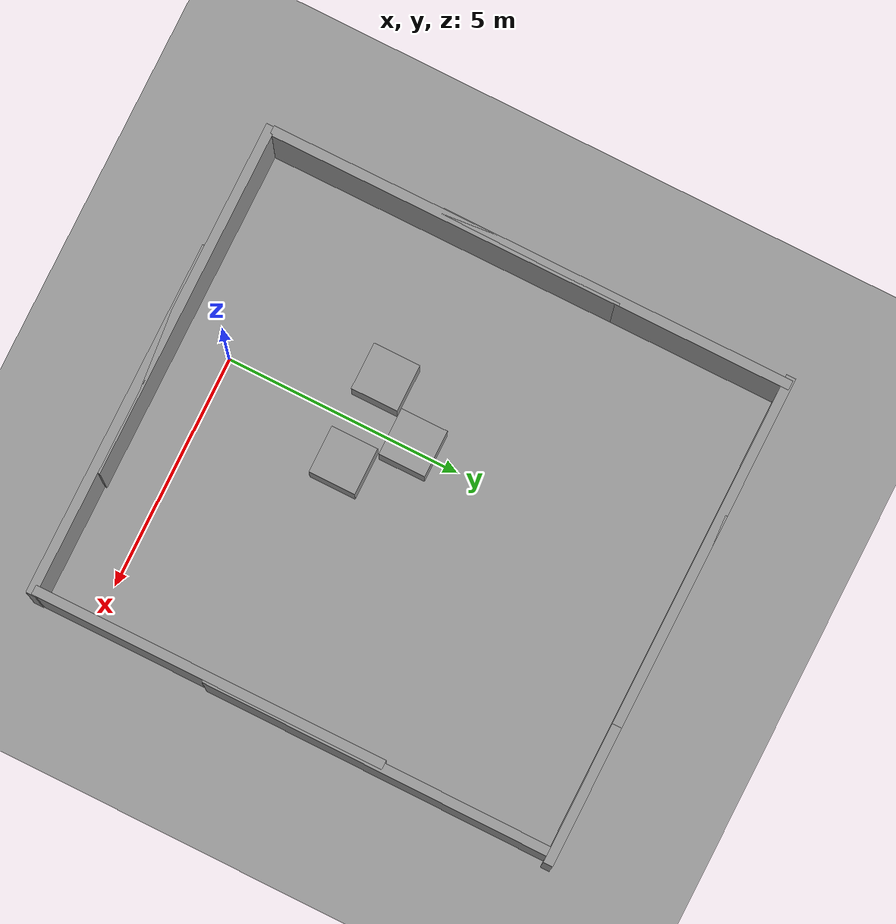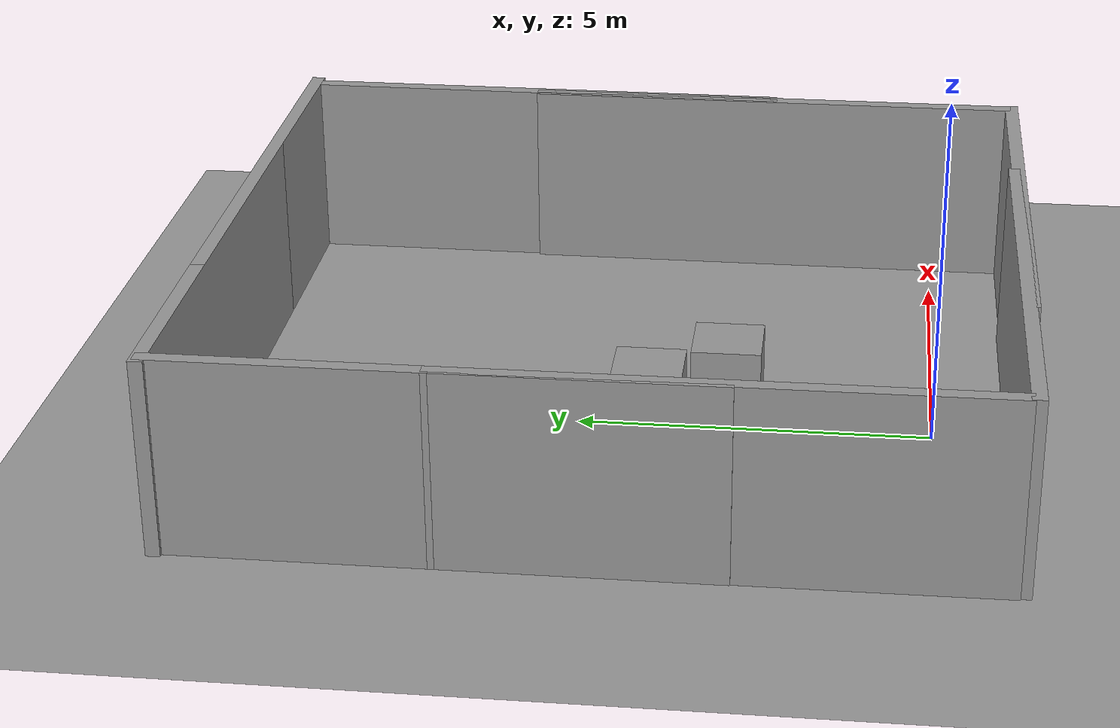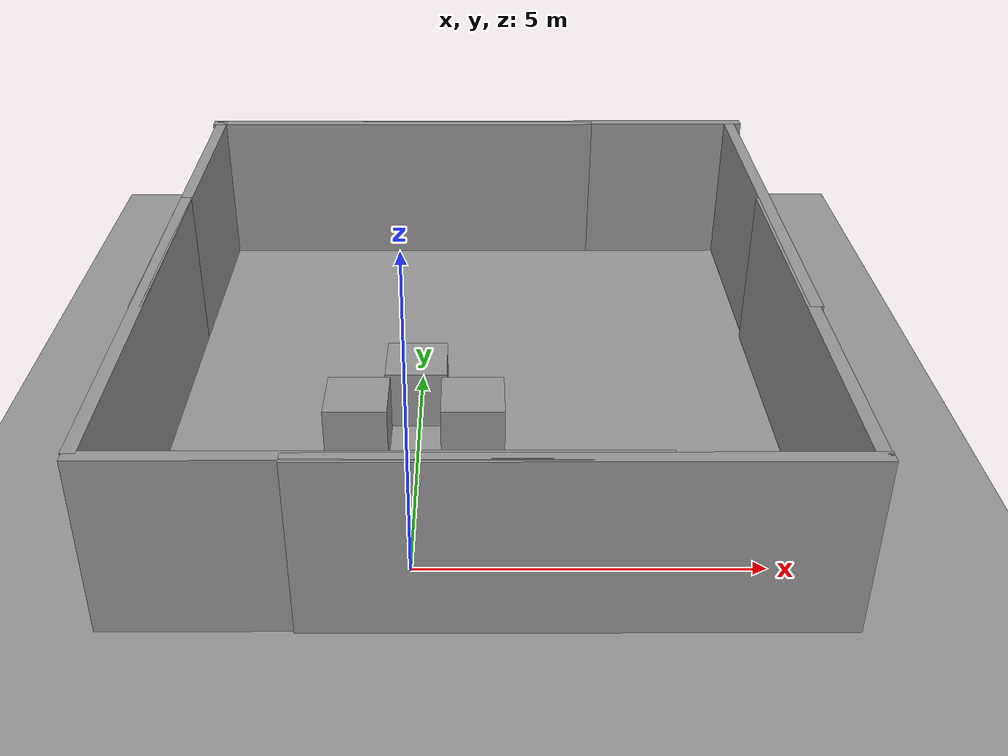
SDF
<sdf version="1.4">
 <world name="default">
  <light name="sun" type="directional">
   <pose>0 0 10 0 -0 0</pose>
   <diffuse>0.8 0.8 0.8 1</diffuse>
   <specular>0.2 0.2 0.2 1</specular>
   <attenuation>
    <range>1000</range>
    <constant>0.9</constant>
    <linear>0.01</linear>
    <quadratic>0.001</quadratic>
   </attenuation>
   <direction>0.5 0.1 -0.9</direction>
  </light>
  <scene><ambient>0.4 0.4 0.4 1</ambient><background>0.7 0.7 0.7 1</background><shadows>1</shadows></scene>
  <physics type="ode">
   <max_step_size>0.01</max_step_size>
   <real_time_factor>1</real_time_factor>
   <real_time_update_rate>100</real_time_update_rate>
   <gravity>0 0 -9.8</gravity>
  </physics>
  <model name="ground_plane_0">
   <static>1</static>
   <link name="link">
    <collision name="collision">
     <geometry><plane><normal>0 0 1</normal><size>100 100</size></plane></geometry>
     <surface><friction><ode><mu>100</mu><mu2>50</mu2></ode></friction></surface>
    </collision>
    <visual name="visual">
     <cast_shadows>0</cast_shadows>
     <geometry><plane><normal>0 0 1</normal><size>100 100</size></plane></geometry>
     <material>
      <script><uri>file://media/materials/scripts/gazebo.material</uri><name>Gazebo/Grey</name></script>
     </material>
    </visual>
    <velocity_decay><linear>0</linear><angular>0</angular></velocity_decay>
   </link>
   <pose>0.497681 0 0 0 -0 0</pose>
  </model>
  <spherical_coordinates>
   <surface_model>EARTH_WGS84</surface_model>
   <latitude_deg>0</latitude_deg>
   <longitude_deg>0</longitude_deg>
   <elevation>0</elevation>
   <heading_deg>0</heading_deg>
  </spherical_coordinates>
  <model name="grey_wall_1">
   <static>1</static>
   <link name="link">
    <pose>0 0 1.4 0 -0 0</pose>
    <collision name="collision"><geometry><box><size>7.5 0.2 2.8</size></box></geometry></collision>
    <visual name="visual">
     <cast_shadows>0</cast_shadows>
     <geometry><box><size>7.5 0.2 2.8</size></box></geometry>
     <material>
      <script>
       <uri>model://grey_wall/materials/scripts</uri>
       <uri>model://grey_wall/materials/textures</uri>
       <name>vrc/grey_wall</name>
      </script>
     </material>
    </visual>
    <velocity_decay><linear>0</linear><angular>0</angular></velocity_decay>
   </link>
   <pose>-0.400644 -1.11143 0 0 -0 0</pose>
  </model>
  <model name="grey_wall_2">
   <static>1</static>
   <link name="link">
    <pose>0 0 1.4 0 -0 0</pose>
    <collision name="collision"><geometry><box><size>7.5 0.2 2.8</size></box></geometry></collision>
    <visual name="visual">
     <cast_shadows>0</cast_shadows>
     <geometry><box><size>7.5 0.2 2.8</size></box></geometry>
     <material>
      <script>
       <uri>model://grey_wall/materials/scripts</uri>
       <uri>model://grey_wall/materials/textures</uri>
       <name>vrc/grey_wall</name>
      </script>
     </material>
    </visual>
    <velocity_decay><linear>0</linear><angular>0</angular></velocity_decay>
   </link>
   <pose>2.25578 -1.15272 0 0 -0 0</pose>
  </model>
  <model name="grey_wall_3">
   <static>1</static>
   <link name="link">
    <pose>0 0 1.4 0 -0 0</pose>
    <collision name="collision"><geometry><box><size>7.5 0.2 2.8</size></box></geometry></collision>
    <visual name="visual">
     <cast_shadows>0</cast_shadows>
     <geometry><box><size>7.5 0.2 2.8</size></box></geometry>
     <material>
      <script>
       <uri>model://grey_wall/materials/scripts</uri>
       <uri>model://grey_wall/materials/textures</uri>
       <name>vrc/grey_wall</name>
      </script>
     </material>
    </visual>
    <velocity_decay><linear>0</linear><angular>0</angular></velocity_decay>
   </link>
   <pose>-4.09244 2.68441 0 0 0 -1.56568</pose>
  </model>
  <model name="grey_wall_4">
   <static>1</static>
   <link name="link">
    <pose>0 0 1.4 0 -0 0</pose>
    <collision name="collision"><geometry><box><size>7.5 0.2 2.8</size></box></geometry></collision>
    <visual name="visual">
     <cast_shadows>0</cast_shadows>
     <geometry><box><size>7.5 0.2 2.8</size></box></geometry>
     <material>
      <script>
       <uri>model://grey_wall/materials/scripts</uri>
       <uri>model://grey_wall/materials/textures</uri>
       <name>vrc/grey_wall</name>
      </script>
     </material>
    </visual>
    <velocity_decay><linear>0</linear><angular>0</angular></velocity_decay>
   </link>
   <pose>-4.11112 6.31545 0 0 -0 1.57254</pose>
  </model>
  <model name="grey_wall_5">
   <static>1</static>
   <link name="link">
    <pose>0 0 1.4 0 -0 0</pose>
    <collision name="collision"><geometry><box><size>7.5 0.2 2.8</size></box></geometry></collision>
    <visual name="visual">
     <cast_shadows>0</cast_shadows>
     <geometry><box><size>7.5 0.2 2.8</size></box></geometry>
     <material>
      <script>
       <uri>model://grey_wall/materials/scripts</uri>
       <uri>model://grey_wall/materials/textures</uri>
       <name>vrc/grey_wall</name>
      </script>
     </material>
    </visual>
    <velocity_decay><linear>0</linear><angular>0</angular></velocity_decay>
   </link>
   <pose>-0.52469 10 0 0 -0 0</pose>
  </model>
  <model name="grey_wall_6">
   <static>1</static>
   <link name="link">
    <pose>0 0 1.4 0 -0 0</pose>
    <collision name="collision"><geometry><box><size>7.5 0.2 2.8</size></box></geometry></collision>
    <visual name="visual">
     <cast_shadows>0</cast_shadows>
     <geometry><box><size>7.5 0.2 2.8</size></box></geometry>
     <material>
      <script>
       <uri>model://grey_wall/materials/scripts</uri>
       <uri>model://grey_wall/materials/textures</uri>
       <name>vrc/grey_wall</name>
      </script>
     </material>
    </visual>
    <velocity_decay><linear>0</linear><angular>0</angular></velocity_decay>
   </link>
   <pose>2.43485 10 0 0 -0 0</pose>
  </model>
  <model name="grey_wall_7">
   <static>1</static>
   <link name="link">
    <pose>0 0 1.4 0 -0 0</pose>
    <collision name="collision"><geometry><box><size>7.5 0.2 2.8</size></box></geometry></collision>
    <visual name="visual">
     <cast_shadows>0</cast_shadows>
     <geometry><box><size>7.5 0.2 2.8</size></box></geometry>
     <material>
      <script>
       <uri>model://grey_wall/materials/scripts</uri>
       <uri>model://grey_wall/materials/textures</uri>
       <name>vrc/grey_wall</name>
      </script>
     </material>
    </visual>
    <velocity_decay><linear>0</linear><angular>0</angular></velocity_decay>
   </link>
   <pose>5.89002 2.61265 0 0 -0 1.57083</pose>
  </model>
  <model name="grey_wall_8">
   <static>1</static>
   <link name="link">
    <pose>0 0 1.4 0 -0 0</pose>
    <collision name="collision"><geometry><box><size>7.5 0.2 2.8</size></box></geometry></collision>
    <visual name="visual">
     <cast_shadows>0</cast_shadows>
     <geometry><box><size>7.5 0.2 2.8</size></box></geometry>
     <material>
      <script>
       <uri>model://grey_wall/materials/scripts</uri>
       <uri>model://grey_wall/materials/textures</uri>
       <name>vrc/grey_wall</name>
      </script>
     </material>
    </visual>
    <velocity_decay><linear>0</linear><angular>0</angular></velocity_decay>
   </link>
   <pose>5.94459 6.28638 0 0 0 -1.57326</pose>
  </model>
  <model name="unit_box_1">
   <pose>-0.962004 2.94346 0.5 0 -0 -1.9e-05</pose>
   <link name="link">
    <inertial>
     <mass>1</mass>
     <inertia><ixx>1</ixx><ixy>0</ixy><ixz>0</ixz><iyy>1</iyy><iyz>0</iyz><izz>1</izz></inertia>
    </inertial>
    <collision name="collision"><geometry><box><size>0.474723 1.49836 1</size></box></geometry></collision>
    <visual name="visual">
     <geometry><box><size>1 1 1</size></box></geometry>
     <material>
      <script><uri>file://media/materials/scripts/gazebo.material</uri><name>Gazebo/Grey</name></script>
     </material>
    </visual>
    <velocity_decay><linear>0</linear><angular>0</angular></velocity_decay>
   </link>
   <static>0</static>
  </model>
  <model name="unit_box_2">
   <pose>-0.053275 4.00004 0.5 0 -0 4.4e-05</pose>
   <link name="link">
    <inertial>
     <mass>1</mass>
     <inertia><ixx>1</ixx><ixy>0</ixy><ixz>0</ixz><iyy>1</iyy><iyz>0</iyz><izz>1</izz></inertia>
    </inertial>
    <collision name="collision"><geometry><box><size>2.29968 0.576866 1</size></box></geometry></collision>
    <visual name="visual">
     <geometry><box><size>1 1 1</size></box></geometry>
     <material>
      <script><uri>file://media/materials/scripts/gazebo.material</uri><name>Gazebo/Grey</name></script>
     </material>
    </visual>
    <velocity_decay><linear>0</linear><angular>0</angular></velocity_decay>
   </link>
   <static>0</static>
  </model>
  <model name="unit_box_3">
   <pose>0.866356 2.94011 0.5 0 -0 2.3e-05</pose>
   <link name="link">
    <inertial>
     <mass>1</mass>
     <inertia><ixx>1</ixx><ixy>0</ixy><ixz>0</ixz><iyy>1</iyy><iyz>0</iyz><izz>1</izz></inertia>
    </inertial>
    <collision name="collision"><geometry><box><size>0.509614 1.49825 1</size></box></geometry></collision>
    <visual name="visual">
     <geometry><box><size>1 1 1</size></box></geometry>
     <material>
      <script><uri>file://media/materials/scripts/gazebo.material</uri><name>Gazebo/Grey</name></script>
     </material>
    </visual>
    <velocity_decay><linear>0</linear><angular>0</angular></velocity_decay>
   </link>
   <static>0</static>
  </model>
 </world>
</sdf>
